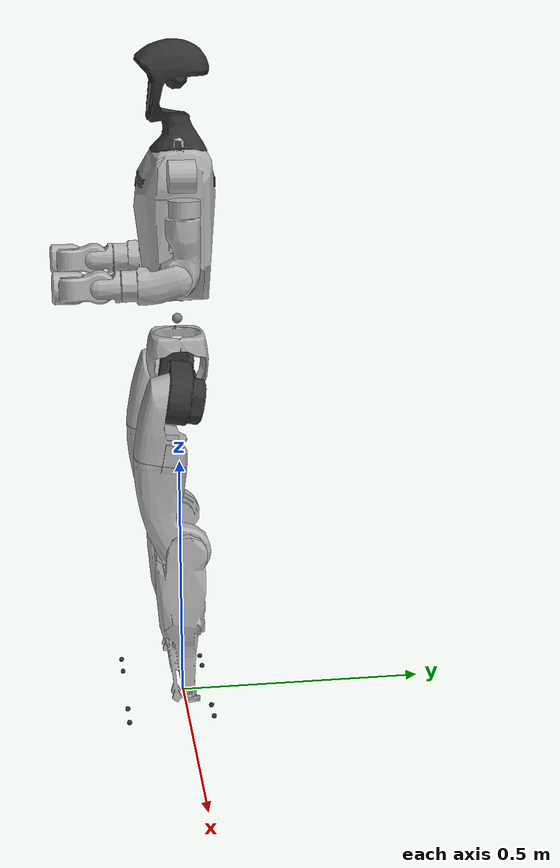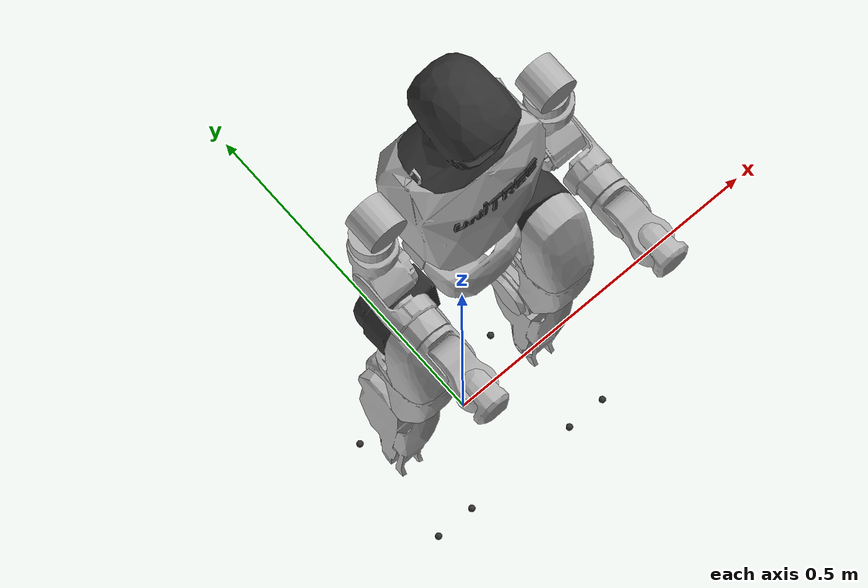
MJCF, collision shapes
<mujoco model="g1_29dof_rev_1_0">
    <compiler angle="radian" meshdir="meshes" autolimits="true" />
    <size njmax="500" nconmax="100" />

    <default>
        <default class="waist_yaw_motor">
            <joint damping="2.557889765" armature="0.010177520" frictionloss="0" />
        </default>
        <default class="waist_motor">
            <joint damping="1.814445687" armature="0.007219450" frictionloss="0" />
        </default>
        <default class="leg_7520_14_motor">
            <joint damping="2.557889765" armature="0.010177520" frictionloss="0" />
        </default>
        <default class="leg_7520_22_motor">
            <joint damping="6.308801854" armature="0.025101925" frictionloss="0" />
        </default>
        <default class="ankle_motor">
            <joint damping="1.814445687" armature="0.007219450" frictionloss="0" />
        </default>
        <default class="arm_motor">
            <joint damping="0.907222843" armature="0.003609725" frictionloss="0" />
        </default>
        <default class="wrist_motor">
            <joint damping="1.068141502" armature="0.004250000" frictionloss="0" />
        </default>

    </default>
    <asset>
        <mesh name="pelvis" file="pelvis.STL" />
        <mesh name="pelvis_contour_link" file="pelvis_contour_link.STL" />
        <mesh name="left_hip_pitch_link" file="left_hip_pitch_link.STL" />
        <mesh name="left_hip_roll_link" file="left_hip_roll_link.STL" />
        <mesh name="left_hip_yaw_link" file="left_hip_yaw_link.STL" />
        <mesh name="left_knee_link" file="left_knee_link.STL" />
        <mesh name="left_ankle_pitch_link" file="left_ankle_pitch_link.STL" />
        <mesh name="left_ankle_roll_link" file="left_ankle_roll_link.STL" />
        <mesh name="right_hip_pitch_link" file="right_hip_pitch_link.STL" />
        <mesh name="right_hip_roll_link" file="right_hip_roll_link.STL" />
        <mesh name="right_hip_yaw_link" file="right_hip_yaw_link.STL" />
        <mesh name="right_knee_link" file="right_knee_link.STL" />
        <mesh name="right_ankle_pitch_link" file="right_ankle_pitch_link.STL" />
        <mesh name="right_ankle_roll_link" file="right_ankle_roll_link.STL" />
        <mesh name="waist_yaw_link_rev_1_0" file="waist_yaw_link_rev_1_0.STL" />
        <mesh name="waist_roll_link_rev_1_0" file="waist_roll_link_rev_1_0.STL" />
        <mesh name="torso_link_rev_1_0" file="torso_link_rev_1_0.STL" />
        <mesh name="logo_link" file="logo_link.STL" />
        <mesh name="head_link" file="head_link.STL" />
        <mesh name="left_shoulder_pitch_link" file="left_shoulder_pitch_link.STL" />
        <mesh name="left_shoulder_roll_link" file="left_shoulder_roll_link.STL" />
        <mesh name="left_shoulder_yaw_link" file="left_shoulder_yaw_link.STL" />
        <mesh name="left_elbow_link" file="left_elbow_link.STL" />
        <mesh name="left_wrist_roll_link" file="left_wrist_roll_link.STL" />
        <mesh name="left_wrist_pitch_link" file="left_wrist_pitch_link.STL" />
        <mesh name="left_wrist_yaw_link" file="left_wrist_yaw_link.STL" />
        <mesh name="left_rubber_hand" file="left_rubber_hand.STL" />
        <mesh name="right_shoulder_pitch_link" file="right_shoulder_pitch_link.STL" />
        <mesh name="right_shoulder_roll_link" file="right_shoulder_roll_link.STL" />
        <mesh name="right_shoulder_yaw_link" file="right_shoulder_yaw_link.STL" />
        <mesh name="right_elbow_link" file="right_elbow_link.STL" />
        <mesh name="right_wrist_roll_link" file="right_wrist_roll_link.STL" />
        <mesh name="right_wrist_pitch_link" file="right_wrist_pitch_link.STL" />
        <mesh name="right_wrist_yaw_link" file="right_wrist_yaw_link.STL" />
        <mesh name="right_rubber_hand" file="right_rubber_hand.STL" />
    </asset>
    <worldbody>
        <body name="pelvis" pos="0 0 0.793" euler="0 0 -1.57">
            <site name="imu" size="0.01" pos="0.0 0.0 0.0" />
            <inertial pos="0 0 -0.07605" quat="1 0 -0.000399148 0" mass="3.813"
                diaginertia="0.010549 0.0093089 0.0079184" />
            <joint name="floating_base_joint" type="free" limited="false" />
            <geom type="mesh" contype="0" conaffinity="0" group="1" rgba="0.2 0.2 0.2 1"
                mesh="pelvis" />
            <geom type="mesh" contype="0" conaffinity="0" group="1" rgba="0.7 0.7 0.7 1"
                mesh="pelvis_contour_link" />
            <geom type="mesh" rgba="0.7 0.7 0.7 1" mesh="pelvis_contour_link" />
            <body name="left_hip_pitch_link" pos="0 0.064452 -0.1027">
                <inertial pos="0.002741 0.047791 -0.02606"
                    quat="0.954862 0.293964 0.0302556 0.030122"
                    mass="1.35" diaginertia="0.00181517 0.00153422 0.00116212" />
                <joint name="left_hip_pitch_joint" pos="0 0 0" axis="0 1 0" limited="true"
                    range="-2.5307 2.8798" class="leg_7520_14_motor" />
                <geom type="mesh" contype="0" conaffinity="0" group="1" rgba="0.2 0.2 0.2 1"
                    mesh="left_hip_pitch_link" />
                <geom type="mesh" rgba="0.2 0.2 0.2 1" mesh="left_hip_pitch_link" />
                <body name="left_hip_roll_link" pos="0 0.052 -0.030465"
                    quat="0.996179 0 -0.0873386 0">
                    <inertial pos="0.029812 -0.001045 -0.087934"
                        quat="0.977808 -1.97119e-05 0.205576 -0.0403793" mass="1.52"
                        diaginertia="0.00254986 0.00241169 0.00148755" />
                    <joint name="left_hip_roll_joint" pos="0 0 0" axis="1 0 0" limited="true"
                        range="-0.5236 2.9671" class="leg_7520_22_motor" />
                    <geom type="mesh" contype="0" conaffinity="0" group="1" rgba="0.7 0.7 0.7 1"
                        mesh="left_hip_roll_link" />
                    <geom type="mesh" rgba="0.7 0.7 0.7 1" mesh="left_hip_roll_link" />
                    <body name="left_hip_yaw_link" pos="0.025001 0 -0.12412">
                        <inertial pos="-0.057709 -0.010981 -0.15078"
                            quat="0.600598 0.15832 0.223482 0.751181" mass="1.702"
                            diaginertia="0.00776166 0.00717575 0.00160139" />
                        <joint name="left_hip_yaw_joint" pos="0 0 0" axis="0 0 1" limited="true"
                            range="-2.7576 2.7576" class="leg_7520_14_motor" />
                        <geom type="mesh" contype="0" conaffinity="0" group="1" rgba="0.7 0.7 0.7 1"
                            mesh="left_hip_yaw_link" />
                        <geom type="mesh" rgba="0.7 0.7 0.7 1" mesh="left_hip_yaw_link" />
                        <body name="left_knee_link" pos="-0.078273 0.0021489 -0.17734"
                            quat="0.996179 0 0.0873386 0">
                            <inertial pos="0.005457 0.003964 -0.12074"
                                quat="0.923418 -0.0327699 0.0158246 0.382067" mass="1.932"
                                diaginertia="0.0113804 0.0112778 0.00146458" />
                            <joint name="left_knee_joint" pos="0 0 0" axis="0 1 0" limited="true"
                                range="-0.087267 2.8798" class="leg_7520_22_motor" />
                            <geom type="mesh" contype="0" conaffinity="0" group="1"
                                rgba="0.7 0.7 0.7 1"
                                mesh="left_knee_link" />
                            <geom type="mesh" rgba="0.7 0.7 0.7 1" mesh="left_knee_link" />
                            <body name="left_ankle_pitch_link" pos="0 -9.4445e-05 -0.30001">
                                <inertial pos="-0.007269 0 0.011137"
                                    quat="0.603053 0.369225 0.369225 0.603053" mass="0.074"
                                    diaginertia="1.89e-05 1.40805e-05 6.9195e-06" />
                                <joint name="left_ankle_pitch_joint" pos="0 0 0" axis="0 1 0"
                                    limited="true" range="-0.87267 0.5236" class="ankle_motor" />
                                <geom type="mesh" contype="0" conaffinity="0" group="1"
                                    rgba="0.7 0.7 0.7 1" mesh="left_ankle_pitch_link" />
                                <geom type="mesh" rgba="0.7 0.7 0.7 1" mesh="left_ankle_pitch_link" />
                                <body name="left_ankle_roll_link" pos="0 0 -0.017558">
                                    <inertial pos="0.026505 0 -0.016425"
                                        quat="-0.000481092 0.728482 -0.000618967 0.685065"
                                        mass="0.608"
                                        diaginertia="0.00167218 0.0016161 0.000217621" />
                                    <joint name="left_ankle_roll_joint" pos="0 0 0" axis="1 0 0"
                                        limited="true" range="-0.2618 0.2618" class="ankle_motor" />
                                    <geom type="mesh" contype="0" conaffinity="0" group="1"
                                        rgba="0.2 0.2 0.2 1" mesh="left_ankle_roll_link" />
                                    <geom size="0.005" pos="-0.05 0.025 -0.03" rgba="0.2 0.2 0.2 1" />
                                    <geom size="0.005" pos="-0.05 -0.025 -0.03" rgba="0.2 0.2 0.2 1" />
                                    <geom size="0.005" pos="0.12 0.03 -0.03" rgba="0.2 0.2 0.2 1" />
                                    <geom size="0.005" pos="0.12 -0.03 -0.03" rgba="0.2 0.2 0.2 1" />
                                </body>
                            </body>
                        </body>
                    </body>
                </body>
            </body>
            <body name="right_hip_pitch_link" pos="0 -0.064452 -0.1027">
                <inertial pos="0.002741 -0.047791 -0.02606"
                    quat="0.954862 -0.293964 0.0302556 -0.030122" mass="1.35"
                    diaginertia="0.00181517 0.00153422 0.00116212" />
                <joint name="right_hip_pitch_joint" pos="0 0 0" axis="0 1 0" limited="true"
                    range="-2.5307 2.8798" class="leg_7520_14_motor" />
                <geom type="mesh" contype="0" conaffinity="0" group="1" rgba="0.2 0.2 0.2 1"
                    mesh="right_hip_pitch_link" />
                <geom type="mesh" rgba="0.2 0.2 0.2 1" mesh="right_hip_pitch_link" />
                <body name="right_hip_roll_link" pos="0 -0.052 -0.030465"
                    quat="0.996179 0 -0.0873386 0">
                    <inertial pos="0.029812 0.001045 -0.087934"
                        quat="0.977808 1.97119e-05 0.205576 0.0403793" mass="1.52"
                        diaginertia="0.00254986 0.00241169 0.00148755" />
                    <joint name="right_hip_roll_joint" pos="0 0 0" axis="1 0 0" limited="true"
                        range="-2.9671 0.5236" class="leg_7520_22_motor" />
                    <geom type="mesh" contype="0" conaffinity="0" group="1" rgba="0.7 0.7 0.7 1"
                        mesh="right_hip_roll_link" />
                    <geom type="mesh" rgba="0.7 0.7 0.7 1" mesh="right_hip_roll_link" />
                    <body name="right_hip_yaw_link" pos="0.025001 0 -0.12412">
                        <inertial pos="-0.057709 0.010981 -0.15078"
                            quat="0.751181 0.223482 0.15832 0.600598" mass="1.702"
                            diaginertia="0.00776166 0.00717575 0.00160139" />
                        <joint name="right_hip_yaw_joint" pos="0 0 0" axis="0 0 1" limited="true"
                            range="-2.7576 2.7576" class="leg_7520_14_motor" />
                        <geom type="mesh" contype="0" conaffinity="0" group="1" rgba="0.7 0.7 0.7 1"
                            mesh="right_hip_yaw_link" />
                        <geom type="mesh" rgba="0.7 0.7 0.7 1" mesh="right_hip_yaw_link" />
                        <body name="right_knee_link" pos="-0.078273 -0.0021489 -0.17734"
                            quat="0.996179 0 0.0873386 0">
                            <inertial pos="0.005457 -0.003964 -0.12074"
                                quat="0.923439 0.0345276 0.0116333 -0.382012" mass="1.932"
                                diaginertia="0.011374 0.0112843 0.00146452" />
                            <joint name="right_knee_joint" pos="0 0 0" axis="0 1 0" limited="true"
                                range="-0.087267 2.8798" class="leg_7520_22_motor" />
                            <geom type="mesh" contype="0" conaffinity="0" group="1"
                                rgba="0.7 0.7 0.7 1"
                                mesh="right_knee_link" />
                            <geom type="mesh" rgba="0.7 0.7 0.7 1" mesh="right_knee_link" />
                            <body name="right_ankle_pitch_link" pos="0 9.4445e-05 -0.30001">
                                <inertial pos="-0.007269 0 0.011137"
                                    quat="0.603053 0.369225 0.369225 0.603053" mass="0.074"
                                    diaginertia="1.89e-05 1.40805e-05 6.9195e-06" />
                                <joint name="right_ankle_pitch_joint" pos="0 0 0" axis="0 1 0"
                                    limited="true" range="-0.87267 0.5236" class="ankle_motor" />
                                <geom type="mesh" contype="0" conaffinity="0" group="1"
                                    rgba="0.7 0.7 0.7 1" mesh="right_ankle_pitch_link" />
                                <geom type="mesh" rgba="0.7 0.7 0.7 1" mesh="right_ankle_pitch_link" />
                                <body name="right_ankle_roll_link" pos="0 0 -0.017558">
                                    <inertial pos="0.026505 0 -0.016425"
                                        quat="0.000481092 0.728482 0.000618967 0.685065"
                                        mass="0.608"
                                        diaginertia="0.00167218 0.0016161 0.000217621" />
                                    <joint name="right_ankle_roll_joint" pos="0 0 0" axis="1 0 0"
                                        limited="true" range="-0.2618 0.2618" class="ankle_motor" />
                                    <geom type="mesh" contype="0" conaffinity="0" group="1"
                                        rgba="0.2 0.2 0.2 1" mesh="right_ankle_roll_link" />
                                    <geom size="0.005" pos="-0.05 0.025 -0.03" rgba="0.2 0.2 0.2 1" />
                                    <geom size="0.005" pos="-0.05 -0.025 -0.03" rgba="0.2 0.2 0.2 1" />
                                    <geom size="0.005" pos="0.12 0.03 -0.03" rgba="0.2 0.2 0.2 1" />
                                    <geom size="0.005" pos="0.12 -0.03 -0.03" rgba="0.2 0.2 0.2 1" />
                                </body>
                            </body>
                        </body>
                    </body>
                </body>
            </body>
            <body name="waist_yaw_link" pos="0 0 0">
                <inertial pos="0.003494 0.000233 0.018034"
                    quat="0.289697 0.591001 -0.337795 0.672821"
                    mass="0.214" diaginertia="0.000163531 0.000107714 0.000102205" />
                <joint name="waist_yaw_joint" pos="0 0 0" axis="0 0 1" limited="true"
                    range="-2.618 2.618" class="waist_yaw_motor" />
                <geom type="mesh" contype="0" conaffinity="0" group="1" rgba="0.7 0.7 0.7 1"
                    mesh="waist_yaw_link_rev_1_0" />
                <body name="waist_roll_link" pos="-0.0039635 0 0.044">
                    <inertial pos="0 2.3e-05 0" quat="0.5 0.5 -0.5 0.5" mass="0.086"
                        diaginertia="8.245e-06 7.079e-06 6.339e-06" />
                    <joint name="waist_roll_joint" pos="0 0 0" axis="1 0 0" limited="true"
                        range="-0.52 0.52" class="waist_motor" />
                    <geom type="mesh" contype="0" conaffinity="0" group="1" rgba="0.7 0.7 0.7 1"
                        mesh="waist_roll_link_rev_1_0" />
                    <site name="secondary_imu" size="0.01" pos="-0.03959 -0.00224 0.13792" />
                    <body name="torso_link" pos="0 0 0">
                        <inertial pos="0.00203133 0.000339727 0.184597"
                            quat="0.999802 -5.98967e-05 0.0198391 0.0013197" mass="7.817"
                            diaginertia="0.121795 0.109773 0.0273733" />
                        <joint name="waist_pitch_joint" pos="0 0 0" axis="0 1 0" limited="true"
                            range="-0.52 0.52" class="waist_motor" />
                        <geom type="mesh" contype="0" conaffinity="0" group="1" rgba="0.7 0.7 0.7 1"
                            mesh="torso_link_rev_1_0" />
                        <geom type="mesh" rgba="0.7 0.7 0.7 1" mesh="torso_link_rev_1_0" />
                        <geom pos="0.0039635 0 -0.044" type="mesh" contype="0" conaffinity="0"
                            group="1"
                            rgba="0.2 0.2 0.2 1" mesh="logo_link" />
                        <geom pos="0.0039635 0 -0.044" type="mesh" rgba="0.2 0.2 0.2 1"
                            mesh="logo_link" />
                        <geom pos="0.0039635 0 -0.044" type="mesh" contype="0" conaffinity="0"
                            group="1"
                            rgba="0.2 0.2 0.2 1" mesh="head_link" />
                        <geom pos="0.0039635 0 -0.044" type="mesh" rgba="0.2 0.2 0.2 1"
                            mesh="head_link" />
                        <body name="left_shoulder_pitch_link" pos="0.0039563 0.10022 0.24778"
                            quat="0.990264 0.139201 1.38722e-05 -9.86868e-05">
                            <inertial pos="0 0.035892 -0.011628"
                                quat="0.654152 0.0130458 -0.326267 0.68225" mass="0.718"
                                diaginertia="0.000465864 0.000432842 0.000406394" />
                            <joint name="left_shoulder_pitch_joint" pos="0 0 0" axis="0 1 0"
                                limited="true" range="-3.0892 2.6704" class="arm_motor" />
                            <geom type="mesh" contype="0" conaffinity="0" group="1"
                                rgba="0.7 0.7 0.7 1"
                                mesh="left_shoulder_pitch_link" />
                            <geom size="0.03 0.025" pos="0 0.04 -0.01" quat="0.707107 0 0.707107 0"
                                type="cylinder" rgba="0.7 0.7 0.7 1" />
                            <body name="left_shoulder_roll_link" pos="0 0.038 -0.013831"
                                quat="0.990268 -0.139172 0 0">
                                <inertial pos="-0.000227 0.00727 -0.063243"
                                    quat="0.701256 -0.0196223 -0.00710317 0.712604" mass="0.643"
                                    diaginertia="0.000691311 0.000618011 0.000388977" />
                                <joint name="left_shoulder_roll_joint" pos="0 0 0" axis="1 0 0"
                                    limited="true" range="-1.5882 2.2515" class="arm_motor" />
                                <geom type="mesh" contype="0" conaffinity="0" group="1"
                                    rgba="0.7 0.7 0.7 1" mesh="left_shoulder_roll_link" />
                                <geom size="0.03 0.015" pos="-0.004 0.006 -0.053" type="cylinder"
                                    rgba="0.7 0.7 0.7 1" />
                                <body name="left_shoulder_yaw_link" pos="0 0.00624 -0.1032">
                                    <inertial pos="0.010773 -0.002949 -0.072009"
                                        quat="0.716879 -0.0964829 -0.0679942 0.687134" mass="0.734"
                                        diaginertia="0.00106187 0.00103217 0.000400661" />
                                    <joint name="left_shoulder_yaw_joint" pos="0 0 0" axis="0 0 1"
                                        limited="true" range="-2.618 2.618" class="arm_motor" />
                                    <geom type="mesh" contype="0" conaffinity="0" group="1"
                                        rgba="0.7 0.7 0.7 1" mesh="left_shoulder_yaw_link" />
                                    <geom type="mesh" rgba="0.7 0.7 0.7 1"
                                        mesh="left_shoulder_yaw_link" />
                                    <body name="left_elbow_link" pos="0.015783 0 -0.080518">
                                        <inertial pos="0.064956 0.004454 -0.010062"
                                            quat="0.541765 0.636132 0.388821 0.388129" mass="0.6"
                                            diaginertia="0.000443035 0.000421612 0.000259353" />
                                        <joint name="left_elbow_joint" pos="0 0 0" axis="0 1 0"
                                            limited="true" range="-1.0472 2.0944" class="arm_motor" />
                                        <geom type="mesh" contype="0" conaffinity="0" group="1"
                                            rgba="0.7 0.7 0.7 1" mesh="left_elbow_link" />
                                        <geom type="mesh" rgba="0.7 0.7 0.7 1"
                                            mesh="left_elbow_link" />
                                        <body name="left_wrist_roll_link" pos="0.1 0.00188791 -0.01">
                                            <inertial pos="0.0171394 0.000537591 4.8864e-07"
                                                quat="0.575338 0.411667 -0.574906 0.411094"
                                                mass="0.085445"
                                                diaginertia="5.48211e-05 4.96646e-05 3.57798e-05" />
                                            <joint name="left_wrist_roll_joint" pos="0 0 0"
                                                axis="1 0 0"
                                                limited="true" range="-1.97222 1.97222"
                                                class="arm_motor" />
                                            <geom type="mesh" contype="0" conaffinity="0" group="1"
                                                rgba="0.7 0.7 0.7 1" mesh="left_wrist_roll_link" />
                                            <geom type="mesh" rgba="0.7 0.7 0.7 1"
                                                mesh="left_wrist_roll_link" />
                                            <body name="left_wrist_pitch_link" pos="0.038 0 0">
                                                <inertial pos="0.0229999 -0.00111685 -0.00111658"
                                                    quat="0.249998 0.661363 0.293036 0.643608"
                                                    mass="0.48405"
                                                    diaginertia="0.000430353 0.000429873 0.000164648" />
                                                <joint name="left_wrist_pitch_joint" pos="0 0 0"
                                                    axis="0 1 0" limited="true"
                                                    range="-1.61443 1.61443" class="wrist_motor" />
                                                <geom type="mesh" contype="0" conaffinity="0"
                                                    group="1"
                                                    rgba="0.7 0.7 0.7 1"
                                                    mesh="left_wrist_pitch_link" />
                                                <geom type="mesh" rgba="0.7 0.7 0.7 1"
                                                    mesh="left_wrist_pitch_link" />
                                                <body name="left_wrist_yaw_link" pos="0.046 0 0">
                                                    <inertial pos="0.0708244 0.000191745 0.00161742"
                                                        quat="0.510571 0.526295 0.468078 0.493188"
                                                        mass="0.254576"
                                                        diaginertia="0.000646113 0.000559993 0.000147566" />
                                                    <joint name="left_wrist_yaw_joint" pos="0 0 0"
                                                        axis="0 0 1" limited="true"
                                                        range="-1.61443 1.61443" class="wrist_motor" />
                                                    <geom type="mesh" contype="0" conaffinity="0"
                                                        group="1" rgba="0.7 0.7 0.7 1"
                                                        mesh="left_wrist_yaw_link" />
                                                    <geom type="mesh" rgba="0.7 0.7 0.7 1"
                                                        mesh="left_wrist_yaw_link" />
                                                    <geom pos="0.0415 0.003 0" type="mesh"
                                                        contype="0"
                                                        conaffinity="0" group="1"
                                                        rgba="0.7 0.7 0.7 1"
                                                        mesh="left_rubber_hand" />
                                                </body>
                                            </body>
                                        </body>
                                    </body>
                                </body>
                            </body>
                        </body>
                        <body name="right_shoulder_pitch_link" pos="0.0039563 -0.10021 0.24778"
                            quat="0.990264 -0.139201 1.38722e-05 9.86868e-05">
                            <inertial pos="0 -0.035892 -0.011628"
                                quat="0.68225 -0.326267 0.0130458 0.654152" mass="0.718"
                                diaginertia="0.000465864 0.000432842 0.000406394" />
                            <joint name="right_shoulder_pitch_joint" pos="0 0 0" axis="0 1 0"
                                limited="true" range="-3.0892 2.6704" class="arm_motor" />
                            <geom type="mesh" contype="0" conaffinity="0" group="1"
                                rgba="0.7 0.7 0.7 1"
                                mesh="right_shoulder_pitch_link" />
                            <geom size="0.03 0.025" pos="0 -0.04 -0.01" quat="0.707107 0 0.707107 0"
                                type="cylinder" rgba="0.7 0.7 0.7 1" />
                            <body name="right_shoulder_roll_link" pos="0 -0.038 -0.013831"
                                quat="0.990268 0.139172 0 0">
                                <inertial pos="-0.000227 -0.00727 -0.063243"
                                    quat="0.712604 -0.00710317 -0.0196223 0.701256" mass="0.643"
                                    diaginertia="0.000691311 0.000618011 0.000388977" />
                                <joint name="right_shoulder_roll_joint" pos="0 0 0" axis="1 0 0"
                                    limited="true" range="-2.2515 1.5882" class="arm_motor" />
                                <geom type="mesh" contype="0" conaffinity="0" group="1"
                                    rgba="0.7 0.7 0.7 1" mesh="right_shoulder_roll_link" />
                                <geom size="0.03 0.015" pos="-0.004 -0.006 -0.053" type="cylinder"
                                    rgba="0.7 0.7 0.7 1" />
                                <body name="right_shoulder_yaw_link" pos="0 -0.00624 -0.1032">
                                    <inertial pos="0.010773 0.002949 -0.072009"
                                        quat="0.687134 -0.0679942 -0.0964829 0.716879" mass="0.734"
                                        diaginertia="0.00106187 0.00103217 0.000400661" />
                                    <joint name="right_shoulder_yaw_joint" pos="0 0 0" axis="0 0 1"
                                        limited="true" range="-2.618 2.618" class="arm_motor" />
                                    <geom type="mesh" contype="0" conaffinity="0" group="1"
                                        rgba="0.7 0.7 0.7 1" mesh="right_shoulder_yaw_link" />
                                    <geom type="mesh" rgba="0.7 0.7 0.7 1"
                                        mesh="right_shoulder_yaw_link" />
                                    <body name="right_elbow_link" pos="0.015783 0 -0.080518">
                                        <inertial pos="0.064956 -0.004454 -0.010062"
                                            quat="0.388129 0.388821 0.636132 0.541765" mass="0.6"
                                            diaginertia="0.000443035 0.000421612 0.000259353" />
                                        <joint name="right_elbow_joint" pos="0 0 0" axis="0 1 0"
                                            limited="true" range="-1.0472 2.0944" class="arm_motor" />
                                        <geom type="mesh" contype="0" conaffinity="0" group="1"
                                            rgba="0.7 0.7 0.7 1" mesh="right_elbow_link" />
                                        <geom type="mesh" rgba="0.7 0.7 0.7 1"
                                            mesh="right_elbow_link" />
                                        <body name="right_wrist_roll_link"
                                            pos="0.1 -0.00188791 -0.01">
                                            <inertial pos="0.0171394 -0.000537591 4.8864e-07"
                                                quat="0.411667 0.575338 -0.411094 0.574906"
                                                mass="0.085445"
                                                diaginertia="5.48211e-05 4.96646e-05 3.57798e-05" />
                                            <joint name="right_wrist_roll_joint" pos="0 0 0"
                                                axis="1 0 0" limited="true" range="-1.97222 1.97222"
                                                class="arm_motor" />
                                            <geom type="mesh" contype="0" conaffinity="0" group="1"
                                                rgba="0.7 0.7 0.7 1" mesh="right_wrist_roll_link" />
                                            <geom type="mesh" rgba="0.7 0.7 0.7 1"
                                                mesh="right_wrist_roll_link" />
                                            <body name="right_wrist_pitch_link" pos="0.038 0 0">
                                                <inertial pos="0.0229999 0.00111685 -0.00111658"
                                                    quat="0.643608 0.293036 0.661363 0.249998"
                                                    mass="0.48405"
                                                    diaginertia="0.000430353 0.000429873 0.000164648" />
                                                <joint name="right_wrist_pitch_joint" pos="0 0 0"
                                                    axis="0 1 0" limited="true"
                                                    range="-1.61443 1.61443" class="wrist_motor" />
                                                <geom type="mesh" contype="0" conaffinity="0"
                                                    group="1"
                                                    rgba="0.7 0.7 0.7 1"
                                                    mesh="right_wrist_pitch_link" />
                                                <geom type="mesh" rgba="0.7 0.7 0.7 1"
                                                    mesh="right_wrist_pitch_link" />
                                                <body name="right_wrist_yaw_link" pos="0.046 0 0">
                                                    <inertial
                                                        pos="0.0708244 -0.000191745 0.00161742"
                                                        quat="0.493188 0.468078 0.526295 0.510571"
                                                        mass="0.254576"
                                                        diaginertia="0.000646113 0.000559993 0.000147566" />
                                                    <joint name="right_wrist_yaw_joint" pos="0 0 0"
                                                        axis="0 0 1" limited="true"
                                                        range="-1.61443 1.61443" class="wrist_motor" />
                                                    <geom type="mesh" contype="0" conaffinity="0"
                                                        group="1" rgba="0.7 0.7 0.7 1"
                                                        mesh="right_wrist_yaw_link" />
                                                    <geom type="mesh" rgba="0.7 0.7 0.7 1"
                                                        mesh="right_wrist_yaw_link" />
                                                    <geom pos="0.0415 -0.003 0" type="mesh"
                                                        contype="0"
                                                        conaffinity="0" group="1"
                                                        rgba="0.7 0.7 0.7 1"
                                                        mesh="right_rubber_hand" />
                                                </body>
                                            </body>
                                        </body>
                                    </body>
                                </body>
                            </body>
                        </body>
                    </body>
                </body>
            </body>
        </body>
    </worldbody>
    <actuator>
        <motor name="left_hip_pitch_joint" joint="left_hip_pitch_joint" ctrlrange="-88 88" />
        <motor name="left_hip_roll_joint" joint="left_hip_roll_joint" ctrlrange="-139 139" />
        <motor name="left_hip_yaw_joint" joint="left_hip_yaw_joint" ctrlrange="-88 88" />
        <motor name="left_knee_joint" joint="left_knee_joint" ctrlrange="-139 139" />
        <motor name="left_ankle_pitch_joint" joint="left_ankle_pitch_joint" ctrlrange="-50 50" />
        <motor name="left_ankle_roll_joint" joint="left_ankle_roll_joint" ctrlrange="-50 50" />

        <motor name="right_hip_pitch_joint" joint="right_hip_pitch_joint" ctrlrange="-88 88" />
        <motor name="right_hip_roll_joint" joint="right_hip_roll_joint" ctrlrange="-139 139" />
        <motor name="right_hip_yaw_joint" joint="right_hip_yaw_joint" ctrlrange="-88 88" />
        <motor name="right_knee_joint" joint="right_knee_joint" ctrlrange="-139 139" />
        <motor name="right_ankle_pitch_joint" joint="right_ankle_pitch_joint" ctrlrange="-50 50" />
        <motor name="right_ankle_roll_joint" joint="right_ankle_roll_joint" ctrlrange="-50 50" />

        <motor name="waist_yaw_joint" joint="waist_yaw_joint" ctrlrange="-88 88" />
        <motor name="waist_roll_joint" joint="waist_roll_joint" ctrlrange="-50 50" />
        <motor name="waist_pitch_joint" joint="waist_pitch_joint" ctrlrange="-50 50" />

        <motor name="left_shoulder_pitch_joint" joint="left_shoulder_pitch_joint" ctrlrange="-25 25" />
        <motor name="left_shoulder_roll_joint" joint="left_shoulder_roll_joint" ctrlrange="-25 25" />
        <motor name="left_shoulder_yaw_joint" joint="left_shoulder_yaw_joint" ctrlrange="-25 25" />
        <motor name="left_elbow_joint" joint="left_elbow_joint" ctrlrange="-25 25" />
        <motor name="left_wrist_roll_joint" joint="left_wrist_roll_joint" ctrlrange="-25 25" />
        <motor name="left_wrist_pitch_joint" joint="left_wrist_pitch_joint" ctrlrange="-5 5" />
        <motor name="left_wrist_yaw_joint" joint="left_wrist_yaw_joint" ctrlrange="-5 5" />

        <motor name="right_shoulder_pitch_joint" joint="right_shoulder_pitch_joint"
            ctrlrange="-25 25" />
        <motor name="right_shoulder_roll_joint" joint="right_shoulder_roll_joint" ctrlrange="-25 25" />
        <motor name="right_shoulder_yaw_joint" joint="right_shoulder_yaw_joint" ctrlrange="-25 25" />
        <motor name="right_elbow_joint" joint="right_elbow_joint" ctrlrange="-25 25" />
        <motor name="right_wrist_roll_joint" joint="right_wrist_roll_joint" ctrlrange="-25 25" />
        <motor name="right_wrist_pitch_joint" joint="right_wrist_pitch_joint" ctrlrange="-5 5" />
        <motor name="right_wrist_yaw_joint" joint="right_wrist_yaw_joint" ctrlrange="-5 5" />
    </actuator>

    <sensor>
        <jointpos name="left_hip_pitch_pos" joint="left_hip_pitch_joint" />
        <jointpos name="left_hip_roll_pos" joint="left_hip_roll_joint" />
        <jointpos name="left_hip_yaw_pos" joint="left_hip_yaw_joint" />
        <jointpos name="left_knee_pos" joint="left_knee_joint" />
        <jointpos name="left_ankle_pitch_pos" joint="left_ankle_pitch_joint" />
        <jointpos name="left_ankle_roll_pos" joint="left_ankle_roll_joint" />
        <jointpos name="right_hip_pitch_pos" joint="right_hip_pitch_joint" />
        <jointpos name="right_hip_roll_pos" joint="right_hip_roll_joint" />
        <jointpos name="right_hip_yaw_pos" joint="right_hip_yaw_joint" />
        <jointpos name="right_knee_pos" joint="right_knee_joint" />
        <jointpos name="right_ankle_pitch_pos" joint="right_ankle_pitch_joint" />
        <jointpos name="right_ankle_roll_pos" joint="right_ankle_roll_joint" />
        <jointpos name="waist_yaw_pos" joint="waist_yaw_joint" />
        <jointpos name="waist_roll_pos" joint="waist_roll_joint" />
        <jointpos name="waist_pitch_pos" joint="waist_pitch_joint" />
        <jointpos name="left_shoulder_pitch_pos" joint="left_shoulder_pitch_joint" />
        <jointpos name="left_shoulder_roll_pos" joint="left_shoulder_roll_joint" />
        <jointpos name="left_shoulder_yaw_pos" joint="left_shoulder_yaw_joint" />
        <jointpos name="left_elbow_pos" joint="left_elbow_joint" />
        <jointpos name="left_wrist_roll_pos" joint="left_wrist_roll_joint" />
        <jointpos name="left_wrist_pitch_pos" joint="left_wrist_pitch_joint" />
        <jointpos name="left_wrist_yaw_pos" joint="left_wrist_yaw_joint" />
        <jointpos name="right_shoulder_pitch_pos" joint="right_shoulder_pitch_joint" />
        <jointpos name="right_shoulder_roll_pos" joint="right_shoulder_roll_joint" />
        <jointpos name="right_shoulder_yaw_pos" joint="right_shoulder_yaw_joint" />
        <jointpos name="right_elbow_pos" joint="right_elbow_joint" />
        <jointpos name="right_wrist_roll_pos" joint="right_wrist_roll_joint" />
        <jointpos name="right_wrist_pitch_pos" joint="right_wrist_pitch_joint" />
        <jointpos name="right_wrist_yaw_pos" joint="right_wrist_yaw_joint" />

        <jointvel name="left_hip_pitch_vel" joint="left_hip_pitch_joint" />
        <jointvel name="left_hip_roll_vel" joint="left_hip_roll_joint" />
        <jointvel name="left_hip_yaw_vel" joint="left_hip_yaw_joint" />
        <jointvel name="left_knee_vel" joint="left_knee_joint" />
        <jointvel name="left_ankle_pitch_vel" joint="left_ankle_pitch_joint" />
        <jointvel name="left_ankle_roll_vel" joint="left_ankle_roll_joint" />
        <jointvel name="right_hip_pitch_vel" joint="right_hip_pitch_joint" />
        <jointvel name="right_hip_roll_vel" joint="right_hip_roll_joint" />
        <jointvel name="right_hip_yaw_vel" joint="right_hip_yaw_joint" />
        <jointvel name="right_knee_vel" joint="right_knee_joint" />
        <jointvel name="right_ankle_pitch_vel" joint="right_ankle_pitch_joint" />
        <jointvel name="right_ankle_roll_vel" joint="right_ankle_roll_joint" />
        <jointvel name="waist_yaw_vel" joint="waist_yaw_joint" />
        <jointvel name="waist_roll_vel" joint="waist_roll_joint" />
        <jointvel name="waist_pitch_vel" joint="waist_pitch_joint" />
        <jointvel name="left_shoulder_pitch_vel" joint="left_shoulder_pitch_joint" />
        <jointvel name="left_shoulder_roll_vel" joint="left_shoulder_roll_joint" />
        <jointvel name="left_shoulder_yaw_vel" joint="left_shoulder_yaw_joint" />
        <jointvel name="left_elbow_vel" joint="left_elbow_joint" />
        <jointvel name="left_wrist_roll_vel" joint="left_wrist_roll_joint" />
        <jointvel name="left_wrist_pitch_vel" joint="left_wrist_pitch_joint" />
        <jointvel name="left_wrist_yaw_vel" joint="left_wrist_yaw_joint" />
        <jointvel name="right_shoulder_pitch_vel" joint="right_shoulder_pitch_joint" />
        <jointvel name="right_shoulder_roll_vel" joint="right_shoulder_roll_joint" />
        <jointvel name="right_shoulder_yaw_vel" joint="right_shoulder_yaw_joint" />
        <jointvel name="right_elbow_vel" joint="right_elbow_joint" />
        <jointvel name="right_wrist_roll_vel" joint="right_wrist_roll_joint" />
        <jointvel name="right_wrist_pitch_vel" joint="right_wrist_pitch_joint" />
        <jointvel name="right_wrist_yaw_vel" joint="right_wrist_yaw_joint" />
        <framequat name="imu_quat" objtype="site" objname="imu" />
        <gyro name="imu_gyro" site="imu" />
        <accelerometer name="imu_acc" site="imu" />

        <framepos name="frame_pos" objtype="site" objname="imu" />
        <framelinvel name="frame_vel" objtype="site" objname="imu" />

        <framequat name="secondary_imu_quat" objtype="site" objname="secondary_imu" />
        <gyro name="secondary_imu_gyro" site="secondary_imu" noise="5e-4" cutoff="34.9" />
        <accelerometer name="secondary_imu_acc" site="secondary_imu" noise="1e-2" cutoff="157" />
    </sensor>
</mujoco>
